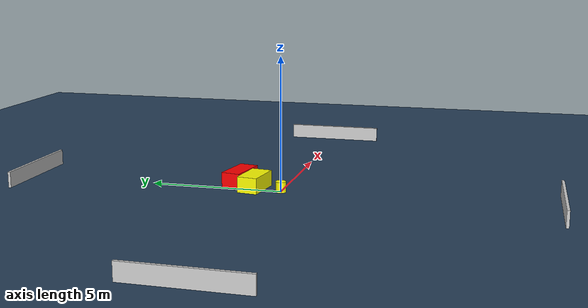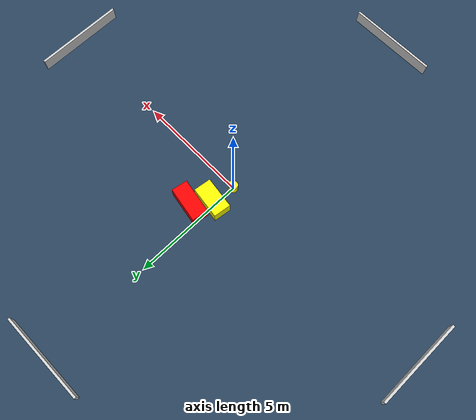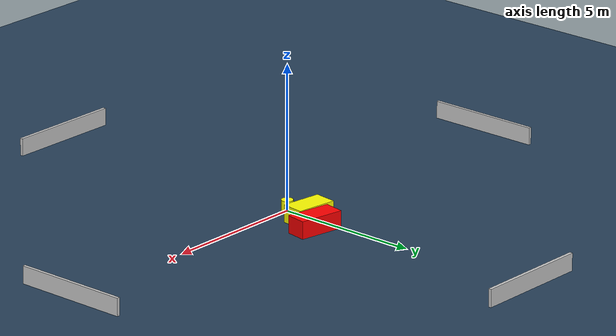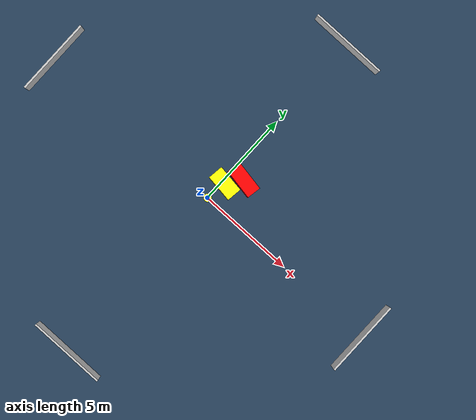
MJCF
<?xml version="1.0" ?>
<mujoco model="generated_environment">
  <option timestep="0.01" integrator="RK4" cone="elliptic"/>
  <default>
    <geom density="1"/>
  </default>
  <asset>
    <texture builtin="gradient" height="3072" name="skybox" rgb1="0.3 0.5 0.7" rgb2="0 0 0" type="skybox" width="512"/>
    <texture builtin="checker" height="300" name="groundplane" rgb1="0.2 0.3 0.4" rgb2="0.1 0.2 0.3" type="2d" width="300"/>
    <material name="groundplane" reflectance="0.2" texrepeat="5 5" texture="groundplane"/>
  </asset>
  <worldbody>
    <light dir="0 0 -1" directional="true" pos="0 0 1.5"/>
    <geom condim="3" friction="0.5 0.005 0.001" material="groundplane" name="floor" pos="0 0 0" size="0 0 0.05" type="plane"/>
    <body name="walls">
      <geom name="wall_1" condim="4" pos="-10.0 0.0 0.3" rgba="0.800000011920929 0.800000011920929 0.800000011920929 1.0" size="0.05 2.0 0.3" type="box"/>
      <geom name="wall_2" condim="4" pos="10.0 0.0 0.3" rgba="0.800000011920929 0.800000011920929 0.800000011920929 1.0" size="0.05 2.0 0.3" type="box"/>
      <geom name="wall_3" condim="4" pos="0.0 -10.0 0.3" rgba="0.800000011920929 0.800000011920929 0.800000011920929 1.0" size="2.0 0.05 0.3" type="box"/>
      <geom name="wall_4" condim="4" pos="0.0 10.0 0.3" rgba="0.800000011920929 0.800000011920929 0.800000011920929 1.0" size="2.0 0.05 0.3" type="box"/>
    </body>
    <body name="robot">
      <joint name="joint_x" type="slide" pos="0 0 0" axis="1 0 0"/>
      <joint name="joint_y" type="slide" pos="0 0 0" axis="0 1 0"/>
      <geom name="robot" type="cylinder" pos="0.0 0.0 0.2" size="0.2 0.2 0.0" mass="5.0" friction="1.0 0.005 0.0001" condim="4" rgba="1.0 1.0 0.0 1.0"/>
    </body>
    <body name="obstacle_1_movable">
      <geom name="obstacle_1_movable" condim="4" pos="0.1493134851806237 1.0563435099563605 0.3" euler="0 0 172.3985867759127" friction="0.0 0.005 0.001" rgba="1.0 1.0 0.0 1.0" size="0.7080675906264591 0.38509462259148186 0.3" type="box" mass="0.1"/>
      <joint type="free"/>
    </body>
    <body name="obstacle_2_static">
      <geom name="obstacle_2_static" condim="4" pos="0.7023115476316885 1.794645821540612 0.3" euler="0 0 80.21514871399368" friction="0.0 0.005 0.001" rgba="1.0 0.0 0.0 1.0" size="0.35871165245251413 0.7895765655559979 0.3" type="box"/>
    </body>
  </worldbody>
  <actuator>
    <motor name="actuator_x" joint="joint_x" gear="1" ctrlrange="-1 1"/>
    <motor name="actuator_y" joint="joint_y" gear="1" ctrlrange="-1 1"/>
  </actuator>
</mujoco>
